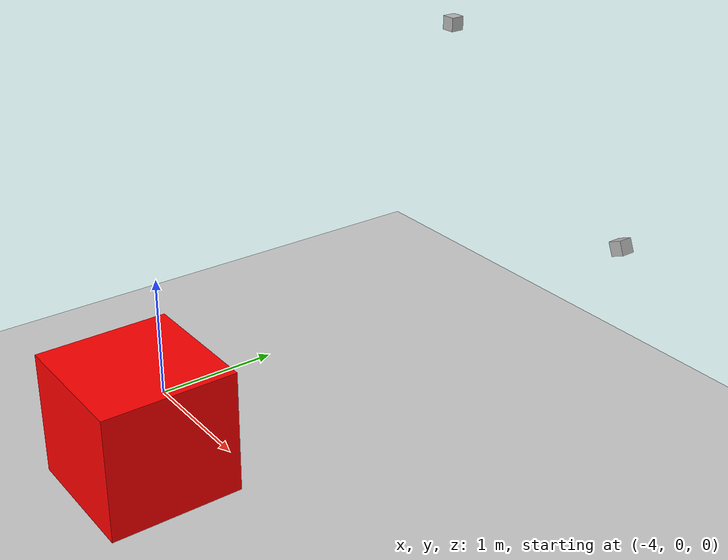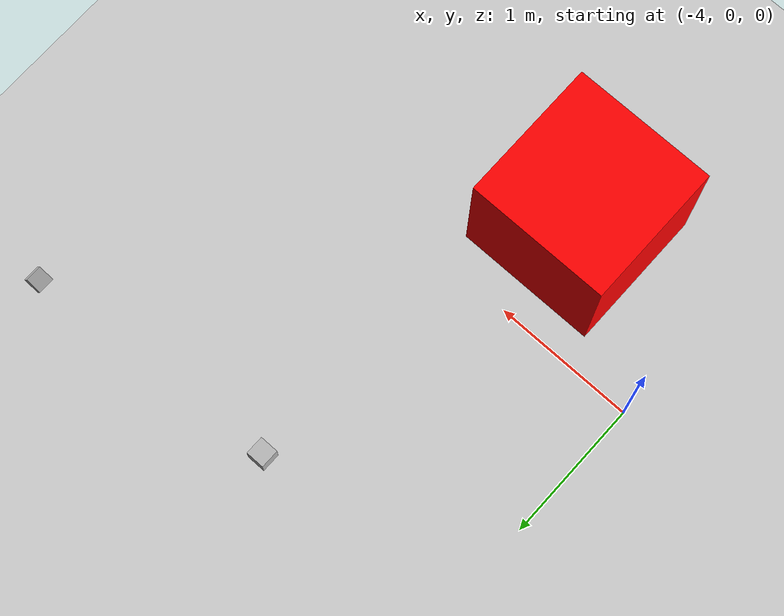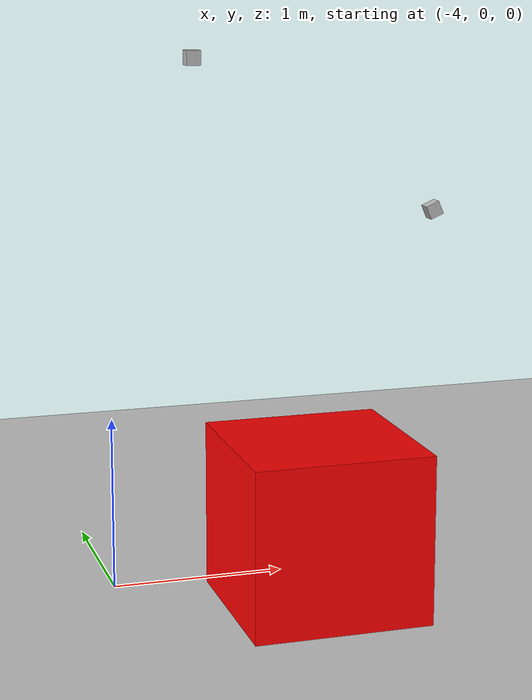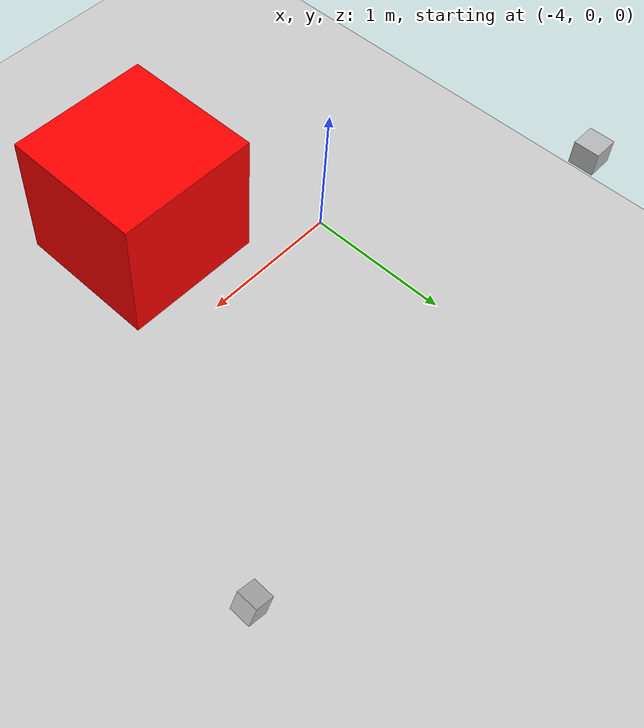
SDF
<sdf version="1.6">
 <world name="rgbd_world">
  <physics name="1ms" type="ignored">
   <max_step_size>0.001</max_step_size>
   <real_time_factor>1.0</real_time_factor>
  </physics>
  <plugin filename="gz-sim-physics-system" name="gz::sim::systems::Physics"/>
  <plugin filename="gz-sim-sensors-system" name="gz::sim::systems::Sensors">
   <render_engine>ogre2</render_engine>
  </plugin>
  <plugin filename="gz-sim-user-commands-system" name="gz::sim::systems::UserCommands"/>
  <plugin filename="gz-sim-scene-broadcaster-system" name="gz::sim::systems::SceneBroadcaster"/>
  <light type="directional" name="sun">
   <pose>0 0 10 0 0 0</pose>
   <diffuse>0.8 0.8 0.8 1</diffuse>
   <specular>0.2 0.2 0.2 1</specular>
   <attenuation>
    <range>1000</range>
    <constant>0.9</constant>
    <linear>0.01</linear>
    <quadratic>0.001</quadratic>
   </attenuation>
   <direction>-0.5 0.1 -0.9</direction>
  </light>
  <model name="ground_plane">
   <static>true</static>
   <link name="link">
    <collision name="collision"><geometry><box><size>20 20 0.1</size></box></geometry></collision>
    <visual name="visual">
     <geometry><box><size>20 20 0.1</size></box></geometry>
     <material>
      <ambient>0.8 0.8 0.8 1</ambient>
      <diffuse>0.8 0.8 0.8 1</diffuse>
      <specular>0.8 0.8 0.8 1</specular>
     </material>
    </visual>
   </link>
  </model>
  <model name="box">
   <pose>-3 -0.7 0.5 0 0 0</pose>
   <link name="box_link">
    <inertial>
     <inertia><ixx>1</ixx><ixy>0</ixy><ixz>0</ixz><iyy>1</iyy><iyz>0</iyz><izz>1</izz></inertia>
     <mass>1.0</mass>
    </inertial>
    <collision name="box_collision"><geometry><box><size>1 1 1</size></box></geometry></collision>
    <visual name="box_visual">
     <geometry><box><size>1 1 1</size></box></geometry>
     <material><ambient>1 0 0 1</ambient><diffuse>1 0 0 1</diffuse><specular>1 0 0 1</specular></material>
    </visual>
   </link>
  </model>
  <model name="ee_camera">
   <pose>-1.25 2 1.8 0 0.406 3.14159</pose>
   <static>true</static>
   <link name="link">
    <inertial>
     <mass>0.1</mass>
     <inertia><ixx>0.000166667</ixx><iyy>0.000166667</iyy><izz>0.000166667</izz></inertia>
    </inertial>
    <collision name="collision"><geometry><box><size>0.1 0.1 0.1</size></box></geometry></collision>
    <visual name="visual"><geometry><box><size>0.1 0.1 0.1</size></box></geometry></visual>
    <sensor name="ee_camera" type="rgbd_camera">
     <camera>
      <horizontal_fov>1.047</horizontal_fov>
      <image><width>320</width><height>240</height></image>
      <clip><near>0.1</near><far>15.0</far></clip>
     </camera>
     <always_on>1</always_on>
     <update_rate>1</update_rate>
     <visualize>true</visualize>
     <topic>ee_camera</topic>
     <enable_metrics>true</enable_metrics>
    </sensor>
   </link>
  </model>
  <model name="top_camera">
   <pose>-3 2 2.9 0 1.5708 0</pose>
   <static>true</static>
   <link name="link">
    <inertial>
     <mass>0.1</mass>
     <inertia><ixx>0.000166667</ixx><iyy>0.000166667</iyy><izz>0.000166667</izz></inertia>
    </inertial>
    <collision name="collision"><geometry><box><size>0.1 0.1 0.1</size></box></geometry></collision>
    <visual name="visual"><geometry><box><size>0.1 0.1 0.1</size></box></geometry></visual>
    <sensor name="top_camera" type="rgbd_camera">
     <camera>
      <horizontal_fov>1.047</horizontal_fov>
      <image><width>320</width><height>240</height></image>
      <clip><near>0.1</near><far>10.0</far></clip>
     </camera>
     <always_on>1</always_on>
     <update_rate>1</update_rate>
     <visualize>true</visualize>
     <topic>top_camera</topic>
     <enable_metrics>true</enable_metrics>
    </sensor>
   </link>
  </model>
 </world>
</sdf>
